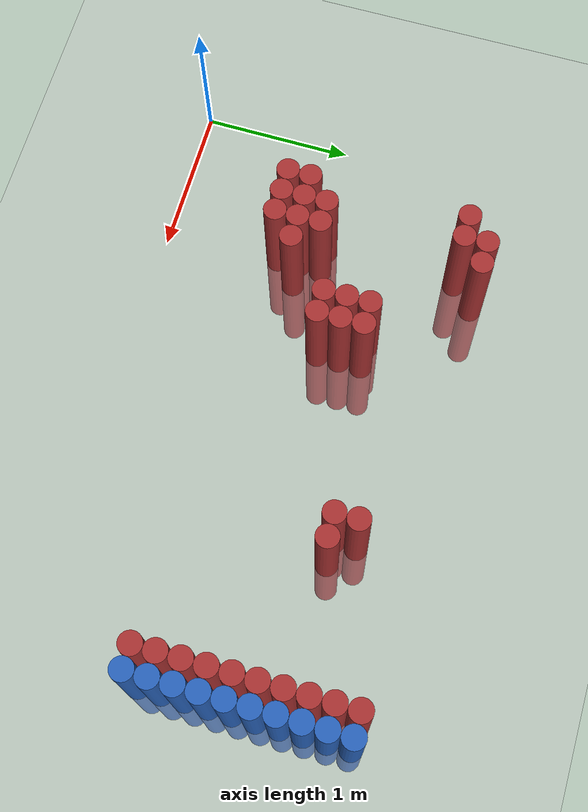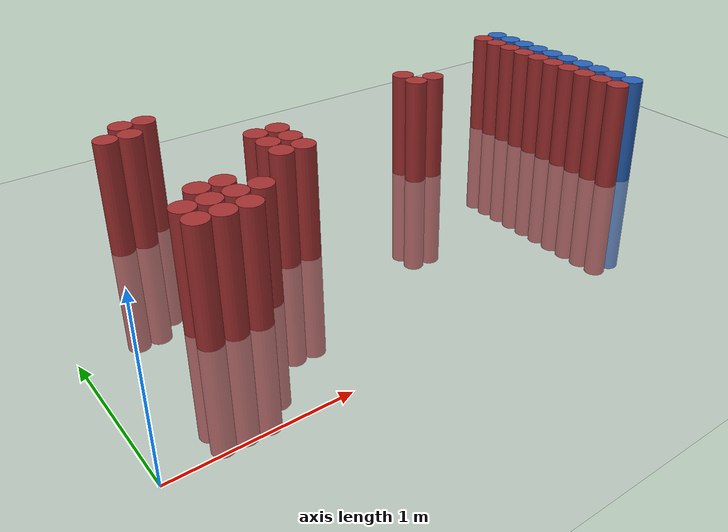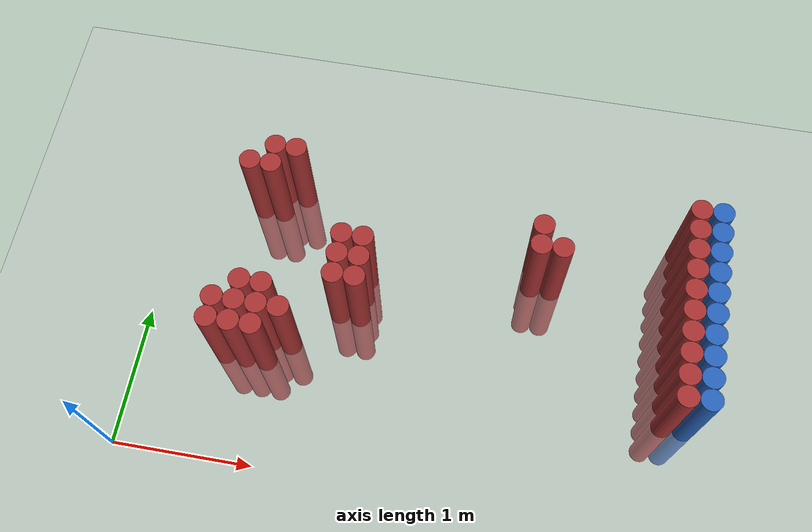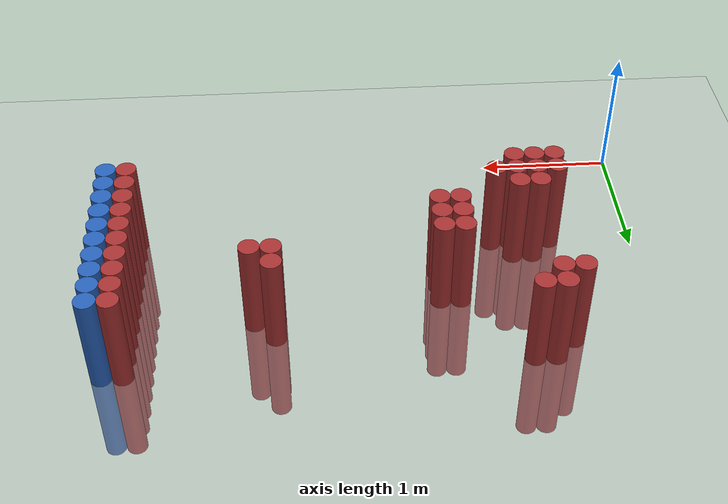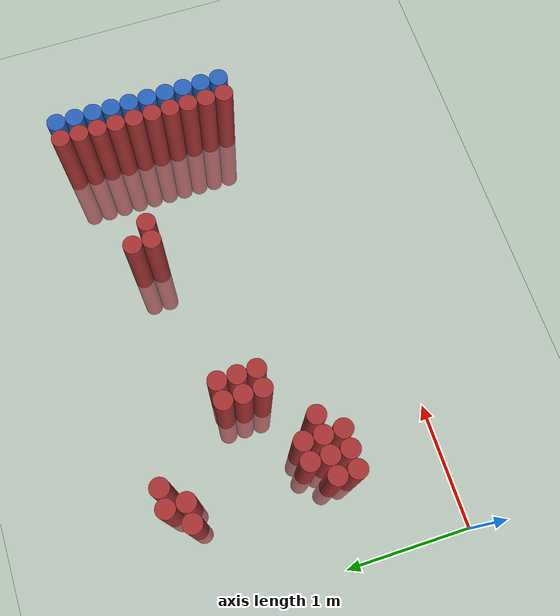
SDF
<sdf version="1.6">
 <world name="default">
  <model name="ground_plane">
   <static>1</static>
   <link name="link">
    <collision name="collision">
     <geometry><plane><normal>0 0 1</normal><size>100 100</size></plane></geometry>
     <surface><friction><ode><mu>100</mu><mu2>50</mu2></ode></friction></surface>
    </collision>
    <visual name="visual">
     <cast_shadows>0</cast_shadows>
     <geometry><plane><normal>0 0 1</normal><size>100 100</size></plane></geometry>
     <material>
      <script><uri>file://media/materials/scripts/gazebo.material</uri><name>Gazebo/Grey</name></script>
     </material>
    </visual>
   </link>
  </model>
  <model name="unit_cylinder_126">
   <static>1</static>
   <pose>3.925000 0.925000 0.000000 0.000000 0.000000 0.000000</pose>
   <link name="link">
    <inertial>
     <mass>1</mass>
     <inertia><ixx>0.145833</ixx><ixy>0</ixy><ixz>0</ixz><iyy>0.145833</iyy><iyz>0</iyz><izz>0.125</izz></inertia>
    </inertial>
    <collision name="collision">
     <geometry><cylinder><radius>0.075000</radius><length>1.5</length></cylinder></geometry>
    </collision>
    <visual name="visual">
     <geometry><cylinder><radius>0.075000</radius><length>1.5</length></cylinder></geometry>
     <material>
      <ambient>0.152000 0.379000 0.720000 1</ambient>
      <diffuse>0.152000 0.379000 0.720000 1</diffuse>
     </material>
     <material>
      <script><name>Gazebo/Grey</name><uri>file://media/materials/scripts/gazebo.material</uri></script>
     </material>
    </visual>
   </link>
  </model>
  <model name="unit_cylinder_128">
   <static>1</static>
   <pose>3.925000 1.075000 0.000000 0.000000 0.000000 0.000000</pose>
   <link name="link">
    <inertial>
     <mass>1</mass>
     <inertia><ixx>0.145833</ixx><ixy>0</ixy><ixz>0</ixz><iyy>0.145833</iyy><iyz>0</iyz><izz>0.125</izz></inertia>
    </inertial>
    <collision name="collision">
     <geometry><cylinder><radius>0.075000</radius><length>1.5</length></cylinder></geometry>
    </collision>
    <visual name="visual">
     <geometry><cylinder><radius>0.075000</radius><length>1.5</length></cylinder></geometry>
     <material>
      <ambient>0.152000 0.379000 0.720000 1</ambient>
      <diffuse>0.152000 0.379000 0.720000 1</diffuse>
     </material>
     <material>
      <script><name>Gazebo/Grey</name><uri>file://media/materials/scripts/gazebo.material</uri></script>
     </material>
    </visual>
   </link>
  </model>
  <model name="unit_cylinder_130">
   <static>1</static>
   <pose>3.925000 1.225000 0.000000 0.000000 0.000000 0.000000</pose>
   <link name="link">
    <inertial>
     <mass>1</mass>
     <inertia><ixx>0.145833</ixx><ixy>0</ixy><ixz>0</ixz><iyy>0.145833</iyy><iyz>0</iyz><izz>0.125</izz></inertia>
    </inertial>
    <collision name="collision">
     <geometry><cylinder><radius>0.075000</radius><length>1.5</length></cylinder></geometry>
    </collision>
    <visual name="visual">
     <geometry><cylinder><radius>0.075000</radius><length>1.5</length></cylinder></geometry>
     <material>
      <ambient>0.152000 0.379000 0.720000 1</ambient>
      <diffuse>0.152000 0.379000 0.720000 1</diffuse>
     </material>
     <material>
      <script><name>Gazebo/Grey</name><uri>file://media/materials/scripts/gazebo.material</uri></script>
     </material>
    </visual>
   </link>
  </model>
  <model name="unit_cylinder_132">
   <static>1</static>
   <pose>3.925000 1.375000 0.000000 0.000000 0.000000 0.000000</pose>
   <link name="link">
    <inertial>
     <mass>1</mass>
     <inertia><ixx>0.145833</ixx><ixy>0</ixy><ixz>0</ixz><iyy>0.145833</iyy><iyz>0</iyz><izz>0.125</izz></inertia>
    </inertial>
    <collision name="collision">
     <geometry><cylinder><radius>0.075000</radius><length>1.5</length></cylinder></geometry>
    </collision>
    <visual name="visual">
     <geometry><cylinder><radius>0.075000</radius><length>1.5</length></cylinder></geometry>
     <material>
      <ambient>0.152000 0.379000 0.720000 1</ambient>
      <diffuse>0.152000 0.379000 0.720000 1</diffuse>
     </material>
     <material>
      <script><name>Gazebo/Grey</name><uri>file://media/materials/scripts/gazebo.material</uri></script>
     </material>
    </visual>
   </link>
  </model>
  <model name="unit_cylinder_134">
   <static>1</static>
   <pose>3.925000 1.525000 0.000000 0.000000 0.000000 0.000000</pose>
   <link name="link">
    <inertial>
     <mass>1</mass>
     <inertia><ixx>0.145833</ixx><ixy>0</ixy><ixz>0</ixz><iyy>0.145833</iyy><iyz>0</iyz><izz>0.125</izz></inertia>
    </inertial>
    <collision name="collision">
     <geometry><cylinder><radius>0.075000</radius><length>1.5</length></cylinder></geometry>
    </collision>
    <visual name="visual">
     <geometry><cylinder><radius>0.075000</radius><length>1.5</length></cylinder></geometry>
     <material>
      <ambient>0.152000 0.379000 0.720000 1</ambient>
      <diffuse>0.152000 0.379000 0.720000 1</diffuse>
     </material>
     <material>
      <script><name>Gazebo/Grey</name><uri>file://media/materials/scripts/gazebo.material</uri></script>
     </material>
    </visual>
   </link>
  </model>
  <model name="unit_cylinder_136">
   <static>1</static>
   <pose>3.925000 1.675000 0.000000 0.000000 0.000000 0.000000</pose>
   <link name="link">
    <inertial>
     <mass>1</mass>
     <inertia><ixx>0.145833</ixx><ixy>0</ixy><ixz>0</ixz><iyy>0.145833</iyy><iyz>0</iyz><izz>0.125</izz></inertia>
    </inertial>
    <collision name="collision">
     <geometry><cylinder><radius>0.075000</radius><length>1.5</length></cylinder></geometry>
    </collision>
    <visual name="visual">
     <geometry><cylinder><radius>0.075000</radius><length>1.5</length></cylinder></geometry>
     <material>
      <ambient>0.152000 0.379000 0.720000 1</ambient>
      <diffuse>0.152000 0.379000 0.720000 1</diffuse>
     </material>
     <material>
      <script><name>Gazebo/Grey</name><uri>file://media/materials/scripts/gazebo.material</uri></script>
     </material>
    </visual>
   </link>
  </model>
  <model name="unit_cylinder_138">
   <static>1</static>
   <pose>3.925000 1.825000 0.000000 0.000000 0.000000 0.000000</pose>
   <link name="link">
    <inertial>
     <mass>1</mass>
     <inertia><ixx>0.145833</ixx><ixy>0</ixy><ixz>0</ixz><iyy>0.145833</iyy><iyz>0</iyz><izz>0.125</izz></inertia>
    </inertial>
    <collision name="collision">
     <geometry><cylinder><radius>0.075000</radius><length>1.5</length></cylinder></geometry>
    </collision>
    <visual name="visual">
     <geometry><cylinder><radius>0.075000</radius><length>1.5</length></cylinder></geometry>
     <material>
      <ambient>0.152000 0.379000 0.720000 1</ambient>
      <diffuse>0.152000 0.379000 0.720000 1</diffuse>
     </material>
     <material>
      <script><name>Gazebo/Grey</name><uri>file://media/materials/scripts/gazebo.material</uri></script>
     </material>
    </visual>
   </link>
  </model>
  <model name="unit_cylinder_140">
   <static>1</static>
   <pose>3.925000 1.975000 0.000000 0.000000 0.000000 0.000000</pose>
   <link name="link">
    <inertial>
     <mass>1</mass>
     <inertia><ixx>0.145833</ixx><ixy>0</ixy><ixz>0</ixz><iyy>0.145833</iyy><iyz>0</iyz><izz>0.125</izz></inertia>
    </inertial>
    <collision name="collision">
     <geometry><cylinder><radius>0.075000</radius><length>1.5</length></cylinder></geometry>
    </collision>
    <visual name="visual">
     <geometry><cylinder><radius>0.075000</radius><length>1.5</length></cylinder></geometry>
     <material>
      <ambient>0.152000 0.379000 0.720000 1</ambient>
      <diffuse>0.152000 0.379000 0.720000 1</diffuse>
     </material>
     <material>
      <script><name>Gazebo/Grey</name><uri>file://media/materials/scripts/gazebo.material</uri></script>
     </material>
    </visual>
   </link>
  </model>
  <model name="unit_cylinder_142">
   <static>1</static>
   <pose>3.925000 2.125000 0.000000 0.000000 0.000000 0.000000</pose>
   <link name="link">
    <inertial>
     <mass>1</mass>
     <inertia><ixx>0.145833</ixx><ixy>0</ixy><ixz>0</ixz><iyy>0.145833</iyy><iyz>0</iyz><izz>0.125</izz></inertia>
    </inertial>
    <collision name="collision">
     <geometry><cylinder><radius>0.075000</radius><length>1.5</length></cylinder></geometry>
    </collision>
    <visual name="visual">
     <geometry><cylinder><radius>0.075000</radius><length>1.5</length></cylinder></geometry>
     <material>
      <ambient>0.152000 0.379000 0.720000 1</ambient>
      <diffuse>0.152000 0.379000 0.720000 1</diffuse>
     </material>
     <material>
      <script><name>Gazebo/Grey</name><uri>file://media/materials/scripts/gazebo.material</uri></script>
     </material>
    </visual>
   </link>
  </model>
  <model name="unit_cylinder_444">
   <static>1</static>
   <pose>0.625000 0.775000 0.000000 0.000000 0.000000 0.000000</pose>
   <link name="link">
    <inertial>
     <mass>1</mass>
     <inertia><ixx>0.145833</ixx><ixy>0</ixy><ixz>0</ixz><iyy>0.145833</iyy><iyz>0</iyz><izz>0.125</izz></inertia>
    </inertial>
    <collision name="collision">
     <geometry><cylinder><radius>0.075000</radius><length>1.5</length></cylinder></geometry>
    </collision>
    <visual name="visual">
     <geometry><cylinder><radius>0.075000</radius><length>1.5</length></cylinder></geometry>
     <material>
      <ambient>0.648000 0.192000 0.192000 1</ambient>
      <diffuse>0.648000 0.192000 0.192000 1</diffuse>
     </material>
     <material>
      <script><name>Gazebo/Grey</name><uri>file://media/materials/scripts/gazebo.material</uri></script>
     </material>
    </visual>
   </link>
  </model>
  <model name="unit_cylinder_445">
   <static>1</static>
   <pose>0.625000 0.925000 0.000000 0.000000 0.000000 0.000000</pose>
   <link name="link">
    <inertial>
     <mass>1</mass>
     <inertia><ixx>0.145833</ixx><ixy>0</ixy><ixz>0</ixz><iyy>0.145833</iyy><iyz>0</iyz><izz>0.125</izz></inertia>
    </inertial>
    <collision name="collision">
     <geometry><cylinder><radius>0.075000</radius><length>1.5</length></cylinder></geometry>
    </collision>
    <visual name="visual">
     <geometry><cylinder><radius>0.075000</radius><length>1.5</length></cylinder></geometry>
     <material>
      <ambient>0.648000 0.192000 0.192000 1</ambient>
      <diffuse>0.648000 0.192000 0.192000 1</diffuse>
     </material>
     <material>
      <script><name>Gazebo/Grey</name><uri>file://media/materials/scripts/gazebo.material</uri></script>
     </material>
    </visual>
   </link>
  </model>
  <model name="unit_cylinder_446">
   <static>1</static>
   <pose>0.625000 1.975000 0.000000 0.000000 0.000000 0.000000</pose>
   <link name="link">
    <inertial>
     <mass>1</mass>
     <inertia><ixx>0.145833</ixx><ixy>0</ixy><ixz>0</ixz><iyy>0.145833</iyy><iyz>0</iyz><izz>0.125</izz></inertia>
    </inertial>
    <collision name="collision">
     <geometry><cylinder><radius>0.075000</radius><length>1.5</length></cylinder></geometry>
    </collision>
    <visual name="visual">
     <geometry><cylinder><radius>0.075000</radius><length>1.5</length></cylinder></geometry>
     <material>
      <ambient>0.648000 0.192000 0.192000 1</ambient>
      <diffuse>0.648000 0.192000 0.192000 1</diffuse>
     </material>
     <material>
      <script><name>Gazebo/Grey</name><uri>file://media/materials/scripts/gazebo.material</uri></script>
     </material>
    </visual>
   </link>
  </model>
  <model name="unit_cylinder_451">
   <static>1</static>
   <pose>0.775000 0.775000 0.000000 0.000000 0.000000 0.000000</pose>
   <link name="link">
    <inertial>
     <mass>1</mass>
     <inertia><ixx>0.145833</ixx><ixy>0</ixy><ixz>0</ixz><iyy>0.145833</iyy><iyz>0</iyz><izz>0.125</izz></inertia>
    </inertial>
    <collision name="collision">
     <geometry><cylinder><radius>0.075000</radius><length>1.5</length></cylinder></geometry>
    </collision>
    <visual name="visual">
     <geometry><cylinder><radius>0.075000</radius><length>1.5</length></cylinder></geometry>
     <material>
      <ambient>0.648000 0.192000 0.192000 1</ambient>
      <diffuse>0.648000 0.192000 0.192000 1</diffuse>
     </material>
     <material>
      <script><name>Gazebo/Grey</name><uri>file://media/materials/scripts/gazebo.material</uri></script>
     </material>
    </visual>
   </link>
  </model>
  <model name="unit_cylinder_452">
   <static>1</static>
   <pose>0.775000 0.925000 0.000000 0.000000 0.000000 0.000000</pose>
   <link name="link">
    <inertial>
     <mass>1</mass>
     <inertia><ixx>0.145833</ixx><ixy>0</ixy><ixz>0</ixz><iyy>0.145833</iyy><iyz>0</iyz><izz>0.125</izz></inertia>
    </inertial>
    <collision name="collision">
     <geometry><cylinder><radius>0.075000</radius><length>1.5</length></cylinder></geometry>
    </collision>
    <visual name="visual">
     <geometry><cylinder><radius>0.075000</radius><length>1.5</length></cylinder></geometry>
     <material>
      <ambient>0.648000 0.192000 0.192000 1</ambient>
      <diffuse>0.648000 0.192000 0.192000 1</diffuse>
     </material>
     <material>
      <script><name>Gazebo/Grey</name><uri>file://media/materials/scripts/gazebo.material</uri></script>
     </material>
    </visual>
   </link>
  </model>
  <model name="unit_cylinder_453">
   <static>1</static>
   <pose>0.775000 1.075000 0.000000 0.000000 0.000000 0.000000</pose>
   <link name="link">
    <inertial>
     <mass>1</mass>
     <inertia><ixx>0.145833</ixx><ixy>0</ixy><ixz>0</ixz><iyy>0.145833</iyy><iyz>0</iyz><izz>0.125</izz></inertia>
    </inertial>
    <collision name="collision">
     <geometry><cylinder><radius>0.075000</radius><length>1.5</length></cylinder></geometry>
    </collision>
    <visual name="visual">
     <geometry><cylinder><radius>0.075000</radius><length>1.5</length></cylinder></geometry>
     <material>
      <ambient>0.648000 0.192000 0.192000 1</ambient>
      <diffuse>0.648000 0.192000 0.192000 1</diffuse>
     </material>
     <material>
      <script><name>Gazebo/Grey</name><uri>file://media/materials/scripts/gazebo.material</uri></script>
     </material>
    </visual>
   </link>
  </model>
  <model name="unit_cylinder_454">
   <static>1</static>
   <pose>0.775000 1.975000 0.000000 0.000000 0.000000 0.000000</pose>
   <link name="link">
    <inertial>
     <mass>1</mass>
     <inertia><ixx>0.145833</ixx><ixy>0</ixy><ixz>0</ixz><iyy>0.145833</iyy><iyz>0</iyz><izz>0.125</izz></inertia>
    </inertial>
    <collision name="collision">
     <geometry><cylinder><radius>0.075000</radius><length>1.5</length></cylinder></geometry>
    </collision>
    <visual name="visual">
     <geometry><cylinder><radius>0.075000</radius><length>1.5</length></cylinder></geometry>
     <material>
      <ambient>0.648000 0.192000 0.192000 1</ambient>
      <diffuse>0.648000 0.192000 0.192000 1</diffuse>
     </material>
     <material>
      <script><name>Gazebo/Grey</name><uri>file://media/materials/scripts/gazebo.material</uri></script>
     </material>
    </visual>
   </link>
  </model>
  <model name="unit_cylinder_455">
   <static>1</static>
   <pose>0.775000 2.125000 0.000000 0.000000 0.000000 0.000000</pose>
   <link name="link">
    <inertial>
     <mass>1</mass>
     <inertia><ixx>0.145833</ixx><ixy>0</ixy><ixz>0</ixz><iyy>0.145833</iyy><iyz>0</iyz><izz>0.125</izz></inertia>
    </inertial>
    <collision name="collision">
     <geometry><cylinder><radius>0.075000</radius><length>1.5</length></cylinder></geometry>
    </collision>
    <visual name="visual">
     <geometry><cylinder><radius>0.075000</radius><length>1.5</length></cylinder></geometry>
     <material>
      <ambient>0.648000 0.192000 0.192000 1</ambient>
      <diffuse>0.648000 0.192000 0.192000 1</diffuse>
     </material>
     <material>
      <script><name>Gazebo/Grey</name><uri>file://media/materials/scripts/gazebo.material</uri></script>
     </material>
    </visual>
   </link>
  </model>
  <model name="unit_cylinder_459">
   <static>1</static>
   <pose>0.925000 0.775000 0.000000 0.000000 0.000000 0.000000</pose>
   <link name="link">
    <inertial>
     <mass>1</mass>
     <inertia><ixx>0.145833</ixx><ixy>0</ixy><ixz>0</ixz><iyy>0.145833</iyy><iyz>0</iyz><izz>0.125</izz></inertia>
    </inertial>
    <collision name="collision">
     <geometry><cylinder><radius>0.075000</radius><length>1.5</length></cylinder></geometry>
    </collision>
    <visual name="visual">
     <geometry><cylinder><radius>0.075000</radius><length>1.5</length></cylinder></geometry>
     <material>
      <ambient>0.648000 0.192000 0.192000 1</ambient>
      <diffuse>0.648000 0.192000 0.192000 1</diffuse>
     </material>
     <material>
      <script><name>Gazebo/Grey</name><uri>file://media/materials/scripts/gazebo.material</uri></script>
     </material>
    </visual>
   </link>
  </model>
  <model name="unit_cylinder_460">
   <static>1</static>
   <pose>0.925000 0.925000 0.000000 0.000000 0.000000 0.000000</pose>
   <link name="link">
    <inertial>
     <mass>1</mass>
     <inertia><ixx>0.145833</ixx><ixy>0</ixy><ixz>0</ixz><iyy>0.145833</iyy><iyz>0</iyz><izz>0.125</izz></inertia>
    </inertial>
    <collision name="collision">
     <geometry><cylinder><radius>0.075000</radius><length>1.5</length></cylinder></geometry>
    </collision>
    <visual name="visual">
     <geometry><cylinder><radius>0.075000</radius><length>1.5</length></cylinder></geometry>
     <material>
      <ambient>0.648000 0.192000 0.192000 1</ambient>
      <diffuse>0.648000 0.192000 0.192000 1</diffuse>
     </material>
     <material>
      <script><name>Gazebo/Grey</name><uri>file://media/materials/scripts/gazebo.material</uri></script>
     </material>
    </visual>
   </link>
  </model>
  <model name="unit_cylinder_461">
   <static>1</static>
   <pose>0.925000 1.075000 0.000000 0.000000 0.000000 0.000000</pose>
   <link name="link">
    <inertial>
     <mass>1</mass>
     <inertia><ixx>0.145833</ixx><ixy>0</ixy><ixz>0</ixz><iyy>0.145833</iyy><iyz>0</iyz><izz>0.125</izz></inertia>
    </inertial>
    <collision name="collision">
     <geometry><cylinder><radius>0.075000</radius><length>1.5</length></cylinder></geometry>
    </collision>
    <visual name="visual">
     <geometry><cylinder><radius>0.075000</radius><length>1.5</length></cylinder></geometry>
     <material>
      <ambient>0.648000 0.192000 0.192000 1</ambient>
      <diffuse>0.648000 0.192000 0.192000 1</diffuse>
     </material>
     <material>
      <script><name>Gazebo/Grey</name><uri>file://media/materials/scripts/gazebo.material</uri></script>
     </material>
    </visual>
   </link>
  </model>
  <model name="unit_cylinder_462">
   <static>1</static>
   <pose>0.925000 2.125000 0.000000 0.000000 0.000000 0.000000</pose>
   <link name="link">
    <inertial>
     <mass>1</mass>
     <inertia><ixx>0.145833</ixx><ixy>0</ixy><ixz>0</ixz><iyy>0.145833</iyy><iyz>0</iyz><izz>0.125</izz></inertia>
    </inertial>
    <collision name="collision">
     <geometry><cylinder><radius>0.075000</radius><length>1.5</length></cylinder></geometry>
    </collision>
    <visual name="visual">
     <geometry><cylinder><radius>0.075000</radius><length>1.5</length></cylinder></geometry>
     <material>
      <ambient>0.648000 0.192000 0.192000 1</ambient>
      <diffuse>0.648000 0.192000 0.192000 1</diffuse>
     </material>
     <material>
      <script><name>Gazebo/Grey</name><uri>file://media/materials/scripts/gazebo.material</uri></script>
     </material>
    </visual>
   </link>
  </model>
  <model name="unit_cylinder_466">
   <static>1</static>
   <pose>1.075000 0.925000 0.000000 0.000000 0.000000 0.000000</pose>
   <link name="link">
    <inertial>
     <mass>1</mass>
     <inertia><ixx>0.145833</ixx><ixy>0</ixy><ixz>0</ixz><iyy>0.145833</iyy><iyz>0</iyz><izz>0.125</izz></inertia>
    </inertial>
    <collision name="collision">
     <geometry><cylinder><radius>0.075000</radius><length>1.5</length></cylinder></geometry>
    </collision>
    <visual name="visual">
     <geometry><cylinder><radius>0.075000</radius><length>1.5</length></cylinder></geometry>
     <material>
      <ambient>0.648000 0.192000 0.192000 1</ambient>
      <diffuse>0.648000 0.192000 0.192000 1</diffuse>
     </material>
     <material>
      <script><name>Gazebo/Grey</name><uri>file://media/materials/scripts/gazebo.material</uri></script>
     </material>
    </visual>
   </link>
  </model>
  <model name="unit_cylinder_473">
   <static>1</static>
   <pose>1.375000 1.225000 0.000000 0.000000 0.000000 0.000000</pose>
   <link name="link">
    <inertial>
     <mass>1</mass>
     <inertia><ixx>0.145833</ixx><ixy>0</ixy><ixz>0</ixz><iyy>0.145833</iyy><iyz>0</iyz><izz>0.125</izz></inertia>
    </inertial>
    <collision name="collision">
     <geometry><cylinder><radius>0.075000</radius><length>1.5</length></cylinder></geometry>
    </collision>
    <visual name="visual">
     <geometry><cylinder><radius>0.075000</radius><length>1.5</length></cylinder></geometry>
     <material>
      <ambient>0.648000 0.192000 0.192000 1</ambient>
      <diffuse>0.648000 0.192000 0.192000 1</diffuse>
     </material>
     <material>
      <script><name>Gazebo/Grey</name><uri>file://media/materials/scripts/gazebo.material</uri></script>
     </material>
    </visual>
   </link>
  </model>
  <model name="unit_cylinder_474">
   <static>1</static>
   <pose>1.375000 1.375000 0.000000 0.000000 0.000000 0.000000</pose>
   <link name="link">
    <inertial>
     <mass>1</mass>
     <inertia><ixx>0.145833</ixx><ixy>0</ixy><ixz>0</ixz><iyy>0.145833</iyy><iyz>0</iyz><izz>0.125</izz></inertia>
    </inertial>
    <collision name="collision">
     <geometry><cylinder><radius>0.075000</radius><length>1.5</length></cylinder></geometry>
    </collision>
    <visual name="visual">
     <geometry><cylinder><radius>0.075000</radius><length>1.5</length></cylinder></geometry>
     <material>
      <ambient>0.648000 0.192000 0.192000 1</ambient>
      <diffuse>0.648000 0.192000 0.192000 1</diffuse>
     </material>
     <material>
      <script><name>Gazebo/Grey</name><uri>file://media/materials/scripts/gazebo.material</uri></script>
     </material>
    </visual>
   </link>
  </model>
  <model name="unit_cylinder_475">
   <static>1</static>
   <pose>1.375000 1.525000 0.000000 0.000000 0.000000 0.000000</pose>
   <link name="link">
    <inertial>
     <mass>1</mass>
     <inertia><ixx>0.145833</ixx><ixy>0</ixy><ixz>0</ixz><iyy>0.145833</iyy><iyz>0</iyz><izz>0.125</izz></inertia>
    </inertial>
    <collision name="collision">
     <geometry><cylinder><radius>0.075000</radius><length>1.5</length></cylinder></geometry>
    </collision>
    <visual name="visual">
     <geometry><cylinder><radius>0.075000</radius><length>1.5</length></cylinder></geometry>
     <material>
      <ambient>0.648000 0.192000 0.192000 1</ambient>
      <diffuse>0.648000 0.192000 0.192000 1</diffuse>
     </material>
     <material>
      <script><name>Gazebo/Grey</name><uri>file://media/materials/scripts/gazebo.material</uri></script>
     </material>
    </visual>
   </link>
  </model>
  <model name="unit_cylinder_476">
   <static>1</static>
   <pose>1.525000 1.225000 0.000000 0.000000 0.000000 0.000000</pose>
   <link name="link">
    <inertial>
     <mass>1</mass>
     <inertia><ixx>0.145833</ixx><ixy>0</ixy><ixz>0</ixz><iyy>0.145833</iyy><iyz>0</iyz><izz>0.125</izz></inertia>
    </inertial>
    <collision name="collision">
     <geometry><cylinder><radius>0.075000</radius><length>1.5</length></cylinder></geometry>
    </collision>
    <visual name="visual">
     <geometry><cylinder><radius>0.075000</radius><length>1.5</length></cylinder></geometry>
     <material>
      <ambient>0.648000 0.192000 0.192000 1</ambient>
      <diffuse>0.648000 0.192000 0.192000 1</diffuse>
     </material>
     <material>
      <script><name>Gazebo/Grey</name><uri>file://media/materials/scripts/gazebo.material</uri></script>
     </material>
    </visual>
   </link>
  </model>
  <model name="unit_cylinder_477">
   <static>1</static>
   <pose>1.525000 1.375000 0.000000 0.000000 0.000000 0.000000</pose>
   <link name="link">
    <inertial>
     <mass>1</mass>
     <inertia><ixx>0.145833</ixx><ixy>0</ixy><ixz>0</ixz><iyy>0.145833</iyy><iyz>0</iyz><izz>0.125</izz></inertia>
    </inertial>
    <collision name="collision">
     <geometry><cylinder><radius>0.075000</radius><length>1.5</length></cylinder></geometry>
    </collision>
    <visual name="visual">
     <geometry><cylinder><radius>0.075000</radius><length>1.5</length></cylinder></geometry>
     <material>
      <ambient>0.648000 0.192000 0.192000 1</ambient>
      <diffuse>0.648000 0.192000 0.192000 1</diffuse>
     </material>
     <material>
      <script><name>Gazebo/Grey</name><uri>file://media/materials/scripts/gazebo.material</uri></script>
     </material>
    </visual>
   </link>
  </model>
  <model name="unit_cylinder_478">
   <static>1</static>
   <pose>1.525000 1.525000 0.000000 0.000000 0.000000 0.000000</pose>
   <link name="link">
    <inertial>
     <mass>1</mass>
     <inertia><ixx>0.145833</ixx><ixy>0</ixy><ixz>0</ixz><iyy>0.145833</iyy><iyz>0</iyz><izz>0.125</izz></inertia>
    </inertial>
    <collision name="collision">
     <geometry><cylinder><radius>0.075000</radius><length>1.5</length></cylinder></geometry>
    </collision>
    <visual name="visual">
     <geometry><cylinder><radius>0.075000</radius><length>1.5</length></cylinder></geometry>
     <material>
      <ambient>0.648000 0.192000 0.192000 1</ambient>
      <diffuse>0.648000 0.192000 0.192000 1</diffuse>
     </material>
     <material>
      <script><name>Gazebo/Grey</name><uri>file://media/materials/scripts/gazebo.material</uri></script>
     </material>
    </visual>
   </link>
  </model>
  <model name="unit_cylinder_496">
   <static>1</static>
   <pose>2.725000 1.675000 0.000000 0.000000 0.000000 0.000000</pose>
   <link name="link">
    <inertial>
     <mass>1</mass>
     <inertia><ixx>0.145833</ixx><ixy>0</ixy><ixz>0</ixz><iyy>0.145833</iyy><iyz>0</iyz><izz>0.125</izz></inertia>
    </inertial>
    <collision name="collision">
     <geometry><cylinder><radius>0.075000</radius><length>1.5</length></cylinder></geometry>
    </collision>
    <visual name="visual">
     <geometry><cylinder><radius>0.075000</radius><length>1.5</length></cylinder></geometry>
     <material>
      <ambient>0.648000 0.192000 0.192000 1</ambient>
      <diffuse>0.648000 0.192000 0.192000 1</diffuse>
     </material>
     <material>
      <script><name>Gazebo/Grey</name><uri>file://media/materials/scripts/gazebo.material</uri></script>
     </material>
    </visual>
   </link>
  </model>
  <model name="unit_cylinder_497">
   <static>1</static>
   <pose>2.725000 1.825000 0.000000 0.000000 0.000000 0.000000</pose>
   <link name="link">
    <inertial>
     <mass>1</mass>
     <inertia><ixx>0.145833</ixx><ixy>0</ixy><ixz>0</ixz><iyy>0.145833</iyy><iyz>0</iyz><izz>0.125</izz></inertia>
    </inertial>
    <collision name="collision">
     <geometry><cylinder><radius>0.075000</radius><length>1.5</length></cylinder></geometry>
    </collision>
    <visual name="visual">
     <geometry><cylinder><radius>0.075000</radius><length>1.5</length></cylinder></geometry>
     <material>
      <ambient>0.648000 0.192000 0.192000 1</ambient>
      <diffuse>0.648000 0.192000 0.192000 1</diffuse>
     </material>
     <material>
      <script><name>Gazebo/Grey</name><uri>file://media/materials/scripts/gazebo.material</uri></script>
     </material>
    </visual>
   </link>
  </model>
  <model name="unit_cylinder_503">
   <static>1</static>
   <pose>2.875000 1.675000 0.000000 0.000000 0.000000 0.000000</pose>
   <link name="link">
    <inertial>
     <mass>1</mass>
     <inertia><ixx>0.145833</ixx><ixy>0</ixy><ixz>0</ixz><iyy>0.145833</iyy><iyz>0</iyz><izz>0.125</izz></inertia>
    </inertial>
    <collision name="collision">
     <geometry><cylinder><radius>0.075000</radius><length>1.5</length></cylinder></geometry>
    </collision>
    <visual name="visual">
     <geometry><cylinder><radius>0.075000</radius><length>1.5</length></cylinder></geometry>
     <material>
      <ambient>0.648000 0.192000 0.192000 1</ambient>
      <diffuse>0.648000 0.192000 0.192000 1</diffuse>
     </material>
     <material>
      <script><name>Gazebo/Grey</name><uri>file://media/materials/scripts/gazebo.material</uri></script>
     </material>
    </visual>
   </link>
  </model>
  <model name="unit_cylinder_532">
   <static>1</static>
   <pose>3.775000 0.775000 0.000000 0.000000 0.000000 0.000000</pose>
   <link name="link">
    <inertial>
     <mass>1</mass>
     <inertia><ixx>0.145833</ixx><ixy>0</ixy><ixz>0</ixz><iyy>0.145833</iyy><iyz>0</iyz><izz>0.125</izz></inertia>
    </inertial>
    <collision name="collision">
     <geometry><cylinder><radius>0.075000</radius><length>1.5</length></cylinder></geometry>
    </collision>
    <visual name="visual">
     <geometry><cylinder><radius>0.075000</radius><length>1.5</length></cylinder></geometry>
     <material>
      <ambient>0.648000 0.192000 0.192000 1</ambient>
      <diffuse>0.648000 0.192000 0.192000 1</diffuse>
     </material>
     <material>
      <script><name>Gazebo/Grey</name><uri>file://media/materials/scripts/gazebo.material</uri></script>
     </material>
    </visual>
   </link>
  </model>
  <model name="unit_cylinder_533">
   <static>1</static>
   <pose>3.775000 0.925000 0.000000 0.000000 0.000000 0.000000</pose>
   <link name="link">
    <inertial>
     <mass>1</mass>
     <inertia><ixx>0.145833</ixx><ixy>0</ixy><ixz>0</ixz><iyy>0.145833</iyy><iyz>0</iyz><izz>0.125</izz></inertia>
    </inertial>
    <collision name="collision">
     <geometry><cylinder><radius>0.075000</radius><length>1.5</length></cylinder></geometry>
    </collision>
    <visual name="visual">
     <geometry><cylinder><radius>0.075000</radius><length>1.5</length></cylinder></geometry>
     <material>
      <ambient>0.648000 0.192000 0.192000 1</ambient>
      <diffuse>0.648000 0.192000 0.192000 1</diffuse>
     </material>
     <material>
      <script><name>Gazebo/Grey</name><uri>file://media/materials/scripts/gazebo.material</uri></script>
     </material>
    </visual>
   </link>
  </model>
  <model name="unit_cylinder_534">
   <static>1</static>
   <pose>3.775000 1.075000 0.000000 0.000000 0.000000 0.000000</pose>
   <link name="link">
    <inertial>
     <mass>1</mass>
     <inertia><ixx>0.145833</ixx><ixy>0</ixy><ixz>0</ixz><iyy>0.145833</iyy><iyz>0</iyz><izz>0.125</izz></inertia>
    </inertial>
    <collision name="collision">
     <geometry><cylinder><radius>0.075000</radius><length>1.5</length></cylinder></geometry>
    </collision>
    <visual name="visual">
     <geometry><cylinder><radius>0.075000</radius><length>1.5</length></cylinder></geometry>
     <material>
      <ambient>0.648000 0.192000 0.192000 1</ambient>
      <diffuse>0.648000 0.192000 0.192000 1</diffuse>
     </material>
     <material>
      <script><name>Gazebo/Grey</name><uri>file://media/materials/scripts/gazebo.material</uri></script>
     </material>
    </visual>
   </link>
  </model>
  <model name="unit_cylinder_535">
   <static>1</static>
   <pose>3.775000 1.225000 0.000000 0.000000 0.000000 0.000000</pose>
   <link name="link">
    <inertial>
     <mass>1</mass>
     <inertia><ixx>0.145833</ixx><ixy>0</ixy><ixz>0</ixz><iyy>0.145833</iyy><iyz>0</iyz><izz>0.125</izz></inertia>
    </inertial>
    <collision name="collision">
     <geometry><cylinder><radius>0.075000</radius><length>1.5</length></cylinder></geometry>
    </collision>
    <visual name="visual">
     <geometry><cylinder><radius>0.075000</radius><length>1.5</length></cylinder></geometry>
     <material>
      <ambient>0.648000 0.192000 0.192000 1</ambient>
      <diffuse>0.648000 0.192000 0.192000 1</diffuse>
     </material>
     <material>
      <script><name>Gazebo/Grey</name><uri>file://media/materials/scripts/gazebo.material</uri></script>
     </material>
    </visual>
   </link>
  </model>
  <model name="unit_cylinder_536">
   <static>1</static>
   <pose>3.775000 1.375000 0.000000 0.000000 0.000000 0.000000</pose>
   <link name="link">
    <inertial>
     <mass>1</mass>
     <inertia><ixx>0.145833</ixx><ixy>0</ixy><ixz>0</ixz><iyy>0.145833</iyy><iyz>0</iyz><izz>0.125</izz></inertia>
    </inertial>
    <collision name="collision">
     <geometry><cylinder><radius>0.075000</radius><length>1.5</length></cylinder></geometry>
    </collision>
    <visual name="visual">
     <geometry><cylinder><radius>0.075000</radius><length>1.5</length></cylinder></geometry>
     <material>
      <ambient>0.648000 0.192000 0.192000 1</ambient>
      <diffuse>0.648000 0.192000 0.192000 1</diffuse>
     </material>
     <material>
      <script><name>Gazebo/Grey</name><uri>file://media/materials/scripts/gazebo.material</uri></script>
     </material>
    </visual>
   </link>
  </model>
  <model name="unit_cylinder_537">
   <static>1</static>
   <pose>3.775000 1.525000 0.000000 0.000000 0.000000 0.000000</pose>
   <link name="link">
    <inertial>
     <mass>1</mass>
     <inertia><ixx>0.145833</ixx><ixy>0</ixy><ixz>0</ixz><iyy>0.145833</iyy><iyz>0</iyz><izz>0.125</izz></inertia>
    </inertial>
    <collision name="collision">
     <geometry><cylinder><radius>0.075000</radius><length>1.5</length></cylinder></geometry>
    </collision>
    <visual name="visual">
     <geometry><cylinder><radius>0.075000</radius><length>1.5</length></cylinder></geometry>
     <material>
      <ambient>0.648000 0.192000 0.192000 1</ambient>
      <diffuse>0.648000 0.192000 0.192000 1</diffuse>
     </material>
     <material>
      <script><name>Gazebo/Grey</name><uri>file://media/materials/scripts/gazebo.material</uri></script>
     </material>
    </visual>
   </link>
  </model>
  <model name="unit_cylinder_538">
   <static>1</static>
   <pose>3.775000 1.675000 0.000000 0.000000 0.000000 0.000000</pose>
   <link name="link">
    <inertial>
     <mass>1</mass>
     <inertia><ixx>0.145833</ixx><ixy>0</ixy><ixz>0</ixz><iyy>0.145833</iyy><iyz>0</iyz><izz>0.125</izz></inertia>
    </inertial>
    <collision name="collision">
     <geometry><cylinder><radius>0.075000</radius><length>1.5</length></cylinder></geometry>
    </collision>
    <visual name="visual">
     <geometry><cylinder><radius>0.075000</radius><length>1.5</length></cylinder></geometry>
     <material>
      <ambient>0.648000 0.192000 0.192000 1</ambient>
      <diffuse>0.648000 0.192000 0.192000 1</diffuse>
     </material>
     <material>
      <script><name>Gazebo/Grey</name><uri>file://media/materials/scripts/gazebo.material</uri></script>
     </material>
    </visual>
   </link>
  </model>
  <model name="unit_cylinder_539">
   <static>1</static>
   <pose>3.775000 1.825000 0.000000 0.000000 0.000000 0.000000</pose>
   <link name="link">
    <inertial>
     <mass>1</mass>
     <inertia><ixx>0.145833</ixx><ixy>0</ixy><ixz>0</ixz><iyy>0.145833</iyy><iyz>0</iyz><izz>0.125</izz></inertia>
    </inertial>
    <collision name="collision">
     <geometry><cylinder><radius>0.075000</radius><length>1.5</length></cylinder></geometry>
    </collision>
    <visual name="visual">
     <geometry><cylinder><radius>0.075000</radius><length>1.5</length></cylinder></geometry>
     <material>
      <ambient>0.648000 0.192000 0.192000 1</ambient>
      <diffuse>0.648000 0.192000 0.192000 1</diffuse>
     </material>
     <material>
      <script><name>Gazebo/Grey</name><uri>file://media/materials/scripts/gazebo.material</uri></script>
     </material>
    </visual>
   </link>
  </model>
  <model name="unit_cylinder_540">
   <static>1</static>
   <pose>3.775000 1.975000 0.000000 0.000000 0.000000 0.000000</pose>
   <link name="link">
    <inertial>
     <mass>1</mass>
     <inertia><ixx>0.145833</ixx><ixy>0</ixy><ixz>0</ixz><iyy>0.145833</iyy><iyz>0</iyz><izz>0.125</izz></inertia>
    </inertial>
    <collision name="collision">
     <geometry><cylinder><radius>0.075000</radius><length>1.5</length></cylinder></geometry>
    </collision>
    <visual name="visual">
     <geometry><cylinder><radius>0.075000</radius><length>1.5</length></cylinder></geometry>
     <material>
      <ambient>0.648000 0.192000 0.192000 1</ambient>
      <diffuse>0.648000 0.192000 0.192000 1</diffuse>
     </material>
     <material>
      <script><name>Gazebo/Grey</name><uri>file://media/materials/scripts/gazebo.material</uri></script>
     </material>
    </visual>
   </link>
  </model>
  <model name="unit_cylinder_541">
   <static>1</static>
   <pose>3.775000 2.125000 0.000000 0.000000 0.000000 0.000000</pose>
   <link name="link">
    <inertial>
     <mass>1</mass>
     <inertia><ixx>0.145833</ixx><ixy>0</ixy><ixz>0</ixz><iyy>0.145833</iyy><iyz>0</iyz><izz>0.125</izz></inertia>
    </inertial>
    <collision name="collision">
     <geometry><cylinder><radius>0.075000</radius><length>1.5</length></cylinder></geometry>
    </collision>
    <visual name="visual">
     <geometry><cylinder><radius>0.075000</radius><length>1.5</length></cylinder></geometry>
     <material>
      <ambient>0.648000 0.192000 0.192000 1</ambient>
      <diffuse>0.648000 0.192000 0.192000 1</diffuse>
     </material>
     <material>
      <script><name>Gazebo/Grey</name><uri>file://media/materials/scripts/gazebo.material</uri></script>
     </material>
    </visual>
   </link>
  </model>
  <model name="unit_cylinder_572">
   <static>1</static>
   <pose>3.925000 0.775000 0.000000 0.000000 0.000000 0.000000</pose>
   <link name="link">
    <inertial>
     <mass>1</mass>
     <inertia><ixx>0.145833</ixx><ixy>0</ixy><ixz>0</ixz><iyy>0.145833</iyy><iyz>0</iyz><izz>0.125</izz></inertia>
    </inertial>
    <collision name="collision">
     <geometry><cylinder><radius>0.075000</radius><length>1.5</length></cylinder></geometry>
    </collision>
    <visual name="visual">
     <geometry><cylinder><radius>0.075000</radius><length>1.5</length></cylinder></geometry>
     <material>
      <ambient>0.152000 0.379000 0.720000 1</ambient>
      <diffuse>0.152000 0.379000 0.720000 1</diffuse>
     </material>
     <material>
      <script><name>Gazebo/Grey</name><uri>file://media/materials/scripts/gazebo.material</uri></script>
     </material>
    </visual>
   </link>
  </model>
  <model name="unit_cylinder_573">
   <static>1</static>
   <pose>3.925000 0.925000 0.000000 0.000000 0.000000 0.000000</pose>
   <link name="link">
    <inertial>
     <mass>1</mass>
     <inertia><ixx>0.145833</ixx><ixy>0</ixy><ixz>0</ixz><iyy>0.145833</iyy><iyz>0</iyz><izz>0.125</izz></inertia>
    </inertial>
    <collision name="collision">
     <geometry><cylinder><radius>0.075000</radius><length>1.5</length></cylinder></geometry>
    </collision>
    <visual name="visual">
     <geometry><cylinder><radius>0.075000</radius><length>1.5</length></cylinder></geometry>
     <material>
      <ambient>0.152000 0.379000 0.720000 1</ambient>
      <diffuse>0.152000 0.379000 0.720000 1</diffuse>
     </material>
     <material>
      <script><name>Gazebo/Grey</name><uri>file://media/materials/scripts/gazebo.material</uri></script>
     </material>
    </visual>
   </link>
  </model>
  <model name="unit_cylinder_574">
   <static>1</static>
   <pose>3.925000 1.075000 0.000000 0.000000 0.000000 0.000000</pose>
   <link name="link">
    <inertial>
     <mass>1</mass>
     <inertia><ixx>0.145833</ixx><ixy>0</ixy><ixz>0</ixz><iyy>0.145833</iyy><iyz>0</iyz><izz>0.125</izz></inertia>
    </inertial>
    <collision name="collision">
     <geometry><cylinder><radius>0.075000</radius><length>1.5</length></cylinder></geometry>
    </collision>
    <visual name="visual">
     <geometry><cylinder><radius>0.075000</radius><length>1.5</length></cylinder></geometry>
     <material>
      <ambient>0.152000 0.379000 0.720000 1</ambient>
      <diffuse>0.152000 0.379000 0.720000 1</diffuse>
     </material>
     <material>
      <script><name>Gazebo/Grey</name><uri>file://media/materials/scripts/gazebo.material</uri></script>
     </material>
    </visual>
   </link>
  </model>
  <model name="unit_cylinder_575">
   <static>1</static>
   <pose>3.925000 1.225000 0.000000 0.000000 0.000000 0.000000</pose>
   <link name="link">
    <inertial>
     <mass>1</mass>
     <inertia><ixx>0.145833</ixx><ixy>0</ixy><ixz>0</ixz><iyy>0.145833</iyy><iyz>0</iyz><izz>0.125</izz></inertia>
    </inertial>
    <collision name="collision">
     <geometry><cylinder><radius>0.075000</radius><length>1.5</length></cylinder></geometry>
    </collision>
    <visual name="visual">
     <geometry><cylinder><radius>0.075000</radius><length>1.5</length></cylinder></geometry>
     <material>
      <ambient>0.152000 0.379000 0.720000 1</ambient>
      <diffuse>0.152000 0.379000 0.720000 1</diffuse>
     </material>
     <material>
      <script><name>Gazebo/Grey</name><uri>file://media/materials/scripts/gazebo.material</uri></script>
     </material>
    </visual>
   </link>
  </model>
  <model name="unit_cylinder_576">
   <static>1</static>
   <pose>3.925000 1.375000 0.000000 0.000000 0.000000 0.000000</pose>
   <link name="link">
    <inertial>
     <mass>1</mass>
     <inertia><ixx>0.145833</ixx><ixy>0</ixy><ixz>0</ixz><iyy>0.145833</iyy><iyz>0</iyz><izz>0.125</izz></inertia>
    </inertial>
    <collision name="collision">
     <geometry><cylinder><radius>0.075000</radius><length>1.5</length></cylinder></geometry>
    </collision>
    <visual name="visual">
     <geometry><cylinder><radius>0.075000</radius><length>1.5</length></cylinder></geometry>
     <material>
      <ambient>0.152000 0.379000 0.720000 1</ambient>
      <diffuse>0.152000 0.379000 0.720000 1</diffuse>
     </material>
     <material>
      <script><name>Gazebo/Grey</name><uri>file://media/materials/scripts/gazebo.material</uri></script>
     </material>
    </visual>
   </link>
  </model>
  <model name="unit_cylinder_577">
   <static>1</static>
   <pose>3.925000 1.525000 0.000000 0.000000 0.000000 0.000000</pose>
   <link name="link">
    <inertial>
     <mass>1</mass>
     <inertia><ixx>0.145833</ixx><ixy>0</ixy><ixz>0</ixz><iyy>0.145833</iyy><iyz>0</iyz><izz>0.125</izz></inertia>
    </inertial>
    <collision name="collision">
     <geometry><cylinder><radius>0.075000</radius><length>1.5</length></cylinder></geometry>
    </collision>
    <visual name="visual">
     <geometry><cylinder><radius>0.075000</radius><length>1.5</length></cylinder></geometry>
     <material>
      <ambient>0.152000 0.379000 0.720000 1</ambient>
      <diffuse>0.152000 0.379000 0.720000 1</diffuse>
     </material>
     <material>
      <script><name>Gazebo/Grey</name><uri>file://media/materials/scripts/gazebo.material</uri></script>
     </material>
    </visual>
   </link>
  </model>
  <model name="unit_cylinder_578">
   <static>1</static>
   <pose>3.925000 1.675000 0.000000 0.000000 0.000000 0.000000</pose>
   <link name="link">
    <inertial>
     <mass>1</mass>
     <inertia><ixx>0.145833</ixx><ixy>0</ixy><ixz>0</ixz><iyy>0.145833</iyy><iyz>0</iyz><izz>0.125</izz></inertia>
    </inertial>
    <collision name="collision">
     <geometry><cylinder><radius>0.075000</radius><length>1.5</length></cylinder></geometry>
    </collision>
    <visual name="visual">
     <geometry><cylinder><radius>0.075000</radius><length>1.5</length></cylinder></geometry>
     <material>
      <ambient>0.152000 0.379000 0.720000 1</ambient>
      <diffuse>0.152000 0.379000 0.720000 1</diffuse>
     </material>
     <material>
      <script><name>Gazebo/Grey</name><uri>file://media/materials/scripts/gazebo.material</uri></script>
     </material>
    </visual>
   </link>
  </model>
  <model name="unit_cylinder_579">
   <static>1</static>
   <pose>3.925000 1.825000 0.000000 0.000000 0.000000 0.000000</pose>
   <link name="link">
    <inertial>
     <mass>1</mass>
     <inertia><ixx>0.145833</ixx><ixy>0</ixy><ixz>0</ixz><iyy>0.145833</iyy><iyz>0</iyz><izz>0.125</izz></inertia>
    </inertial>
    <collision name="collision">
     <geometry><cylinder><radius>0.075000</radius><length>1.5</length></cylinder></geometry>
    </collision>
    <visual name="visual">
     <geometry><cylinder><radius>0.075000</radius><length>1.5</length></cylinder></geometry>
     <material>
      <ambient>0.152000 0.379000 0.720000 1</ambient>
      <diffuse>0.152000 0.379000 0.720000 1</diffuse>
     </material>
     <material>
      <script><name>Gazebo/Grey</name><uri>file://media/materials/scripts/gazebo.material</uri></script>
     </material>
    </visual>
   </link>
  </model>
  <model name="unit_cylinder_580">
   <static>1</static>
   <pose>3.925000 1.975000 0.000000 0.000000 0.000000 0.000000</pose>
   <link name="link">
    <inertial>
     <mass>1</mass>
     <inertia><ixx>0.145833</ixx><ixy>0</ixy><ixz>0</ixz><iyy>0.145833</iyy><iyz>0</iyz><izz>0.125</izz></inertia>
    </inertial>
    <collision name="collision">
     <geometry><cylinder><radius>0.075000</radius><length>1.5</length></cylinder></geometry>
    </collision>
    <visual name="visual">
     <geometry><cylinder><radius>0.075000</radius><length>1.5</length></cylinder></geometry>
     <material>
      <ambient>0.152000 0.379000 0.720000 1</ambient>
      <diffuse>0.152000 0.379000 0.720000 1</diffuse>
     </material>
     <material>
      <script><name>Gazebo/Grey</name><uri>file://media/materials/scripts/gazebo.material</uri></script>
     </material>
    </visual>
   </link>
  </model>
 </world>
</sdf>
